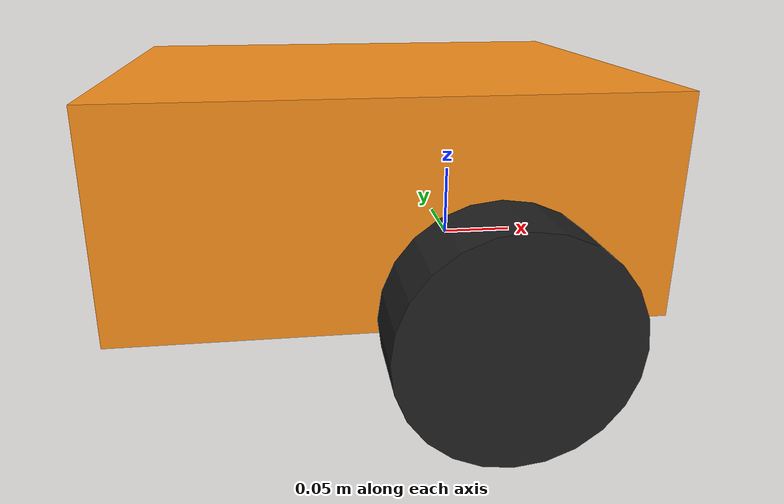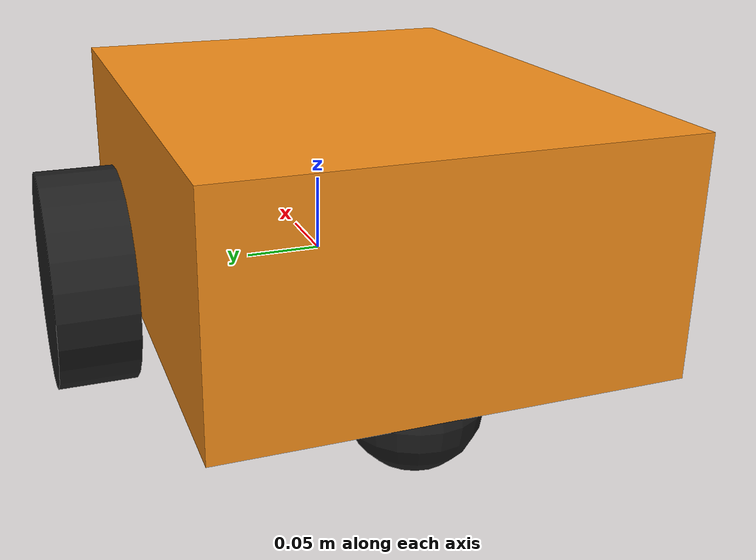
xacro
<?xml version="1.0"?>
<robot xmlns:xacro="http://www.ros.org/wiki/xacro">
    <!--Included Files-->
    <xacro:include filename="colours.xacro"/>
    <xacro:include filename="inertial_macros.xacro" />

    <!--Defining Robot Contants-->

    <xacro:property name="chassis_length" value="0.335"/>
    <xacro:property name="chassis_width" value="0.265"/>
    <xacro:property name="chassis_height" value="0.138"/>
    <xacro:property name="chassis_mass" value="1.0"/>
    <xacro:property name="wheel_radius" value="0.07"/>
    <xacro:property name="wheel_thickness" value="0.05"/>
    <xacro:property name="wheel_mass" value="0.05"/>
    <xacro:property name="wheel_offset_x" value="0.226"/>
    <xacro:property name="wheel_offset_y" value="0.16"/>
    <xacro:property name="wheel_offset_z" value="0.01"/>
    <xacro:property name="caster_wheel_radius" value="0.04"/>
    <xacro:property name="caster_wheel_mass" value="0.01"/>
    <xacro:property name="caster_wheel_offset_x" value="0.06"/>
    <xacro:property name="caster_wheel_offset_z" value="${wheel_offset_z - wheel_radius + caster_wheel_radius}"/>

    <!--Base Link-->
    <link name="base_link">

    </link>

    <!-- Base_footprint Link -->

    <joint name="base_footprint_joint" type="fixed">
        <parent link="base_link"/>
        <child link="base_footprint"/>
        <origin xyz="0 0 0" rpy="0 0 0"/>
    </joint>

    <link name="base_footprint">
    </link>

    <!--Chassis Link-->
    <joint name="chassis_joint" type="fixed">
        <parent link="base_link"/>
        <child link="chassis"/>
        <origin xyz="${-wheel_offset_x} 0 ${-wheel_offset_z}"/>
    </joint>

    <link name="chassis">
        <visual>
            <origin xyz="${chassis_length/2} 0 ${chassis_height/2}"/>
            <geometry>
                <box size="${chassis_length} ${chassis_width} ${chassis_height}"/>
            </geometry>
            <material name="orange"/>
        </visual>
        <collision>
            <origin xyz="${chassis_length/2} 0 ${chassis_height/2}"/>
            <geometry>
                <box size="${chassis_length} ${chassis_width} ${chassis_height}"/>
            </geometry>
        </collision>
        <xacro:inertial_box mass="0.5" x="${chassis_length}" y="${chassis_width}" z="${chassis_height}">
            <origin xyz="${chassis_length/2} 0 ${chassis_height/2}" rpy="0 0 0"/>
        </xacro:inertial_box>
    </link>

    <gazebo reference="chassis">
        <material>Gazebo/Orange</material>
    </gazebo>

    <!--Left Wheel-->
    <joint name="left_wheel_joint" type="continuous">
        <parent link="base_link"/>
        <child link="left_wheel"/>
        <origin xyz="0 ${wheel_offset_y} 0" rpy="${-pi/2} 0 0" />
        <axis xyz="0 0 1"/>
    </joint>

    <link name="left_wheel">
        <visual>
            <geometry>
                <cylinder radius="${wheel_radius}" length="${wheel_thickness}"/>
            </geometry>
            <material name="black"/>
        </visual>
        <collision>
            <geometry>
                <sphere radius="${wheel_radius}"/>
            </geometry>
        </collision>
        <xacro:inertial_cylinder mass="${wheel_mass}" length="${wheel_thickness}" radius="${wheel_radius}">
            <origin xyz="0 0 0" rpy="0 0 0"/>
        </xacro:inertial_cylinder>
    </link>

    <gazebo reference="left_wheel">
        <material>Gazebo/Black</material>
    </gazebo>

    <!--Right Wheel-->

    <joint name="right_wheel_joint" type="continuous">
        <parent link="base_link"/>
        <child link="right_wheel"/>
        <origin xyz="0 ${-wheel_offset_y} 0" rpy="${pi/2} 0 0" />
        <axis xyz="0 0 -1"/>
    </joint>

    <link name="right_wheel">
        <visual>
            <geometry>
                <cylinder radius="${wheel_radius}" length="${wheel_thickness}"/>
            </geometry>
            <material name="black"/>
        </visual>
        <collision>
            <geometry>
                <sphere radius="${wheel_radius}"/>
            </geometry>
        </collision>
        <xacro:inertial_cylinder mass="${wheel_mass}" length="${wheel_thickness}" radius="${wheel_radius}">
            <origin xyz="0 0 0" rpy="0 0 0"/>
        </xacro:inertial_cylinder>
    </link>

    <gazebo reference="right_wheel">
        <material>Gazebo/Black</material>
    </gazebo>

    <!--Caster Wheel-->

    <joint name="caster_wheel_joint" type="fixed">
        <parent link="chassis"/>
        <child link="caster_wheel"/>
        <origin xyz="${caster_wheel_offset_x} 0 ${caster_wheel_offset_z}"/>
    </joint>

    <link name="caster_wheel">
        <visual>
            <geometry>
                <sphere radius="${caster_wheel_radius}"/>
            </geometry>
            <material name="black"/>
        </visual>
        <collision>
            <geometry>
                <sphere radius="${caster_wheel_radius}"/>
            </geometry>
        </collision>
        <xacro:inertial_sphere mass="${caster_wheel_mass}" radius="${caster_wheel_radius}">
            <origin xyz="0 0 0" rpy="0 0 0"/>
        </xacro:inertial_sphere>
    </link>

    <gazebo reference="caster_wheel">
        <material>Gazebo/Black</material>
        <mu1 value="0.001"/>
        <mu2 value="0.001"/>
    </gazebo>
</robot>
